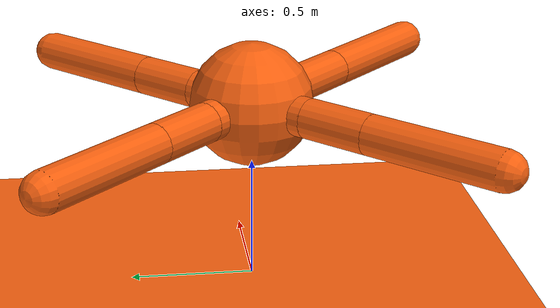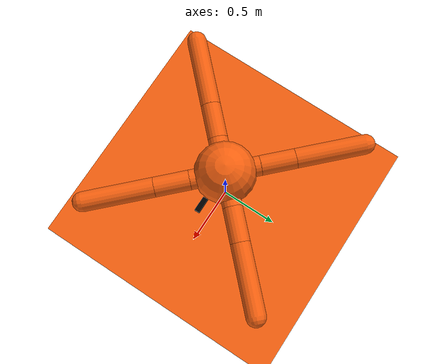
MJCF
<mujoco model="ant">
  <default>
    <joint armature="0.01" damping="0.1" limited="true"/>
    <geom condim="3" density="5.0" friction="1.5 0.1 0.1" margin="0.01" rgba="0.97 0.38 0.06 1"/>
  </default>

  <option timestep="0.016" iterations="50" tolerance="1e-10" solver="Newton" jacobian="dense" cone="pyramidal"/>

  <asset>
      <texture type="skybox" builtin="gradient" rgb1="0.3 0.5 0.7" rgb2="0 0 0" width="512" height="512"/>
      <texture name="texplane" type="2d" builtin="checker" rgb1=".2 .3 .4" rgb2=".1 0.15 0.2" width="512" height="512" mark="cross" markrgb=".8 .8 .8"/>
      <texture name="texgeom" type="cube" builtin="flat" mark="cross" width="127" height="1278"
          rgb1="0.8 0.6 0.4" rgb2="0.8 0.6 0.4" markrgb="1 1 1" random="0.01"/>

      <material name="matplane" reflectance="0.3" texture="texplane" texrepeat="1 1" texuniform="true"/>
      <material name="matgeom" texture="texgeom" texuniform="true" rgba="0.8 0.6 .4 1"/>
  </asset>

  <worldbody>
    <geom name="floor" pos="0 0 0" size="0 0 .25" type="plane" material="matplane" condim="3"/>

    <light directional="false" diffuse=".2 .2 .2" specular="0 0 0" pos="0 0 5" dir="0 0 -1" castshadow="false"/>
    <light mode="targetbodycom" target="torso" directional="false" diffuse=".8 .8 .8" specular="0.3 0.3 0.3" pos="0 0 4.0" dir="0 0 -1"/>

    <body name="torso" pos="0 0 0.75">
      <freejoint name="root"/>
      <geom name="torso_geom" pos="0 0 0" size="0.25" type="sphere"/>

      <!-- Fixed Camera Mount -->
      <body name="camera_mount" pos="0.3 0 0.1">

        <joint name="pan_joint" type="hinge" axis="0 0 1" range="-90 90"/>

        <body name="camera_tilt" pos="0 0 0">
          <joint name="tilt_joint" type="hinge" axis="0 1 0" range="-45 45"/>

          <body name="camera_body" pos="0 0 0">
            <geom type="box" rgba="0 0 0 1" size="0.06 0.02 0.02" contype="2" conaffinity="2" name="camera_body_geom" pos=".03 0 0"/>
          </body>

        </body>
      </body>

      <geom fromto="0.0 0.0 0.0 0.2 0.2 0.0" name="aux_1_geom" size="0.08" type="capsule"/>
      <geom fromto="0.0 0.0 0.0 -0.2 0.2 0.0" name="aux_2_geom" size="0.08" type="capsule"/>
      <geom fromto="0.0 0.0 0.0 -0.2 -0.2 0.0" name="aux_3_geom" size="0.08" type="capsule"/>
      <geom fromto="0.0 0.0 0.0 0.2 -0.2 0.0" name="aux_4_geom" size="0.08" type="capsule"/>

      <body name="front_left_leg" pos="0.2 0.2 0">
        <joint axis="0 0 1" name="hip_1" pos="0.0 0.0 0.0" range="-40 40" type="hinge"/>
        <geom fromto="0.0 0.0 0.0 0.2 0.2 0.0" name="left_leg_geom" size="0.08" type="capsule"/>
        <body pos="0.2 0.2 0" name="front_left_foot">
          <joint axis="-1 1 0" name="ankle_1" pos="0.0 0.0 0.0" range="30 100" type="hinge"/>
          <geom fromto="0.0 0.0 0.0 0.4 0.4 0.0" name="left_ankle_geom" size="0.08" type="capsule"/>
        </body>
      </body>
      <body name="front_right_leg" pos="-0.2 0.2 0">
        <joint axis="0 0 1" name="hip_2" pos="0.0 0.0 0.0" range="-40 40" type="hinge"/>
        <geom fromto="0.0 0.0 0.0 -0.2 0.2 0.0" name="right_leg_geom" size="0.08" type="capsule"/>
        <body pos="-0.2 0.2 0" name="front_right_foot">
          <joint axis="1 1 0" name="ankle_2" pos="0.0 0.0 0.0" range="-100 -30" type="hinge"/>
          <geom fromto="0.0 0.0 0.0 -0.4 0.4 0.0" name="right_ankle_geom" size="0.08" type="capsule"/>
        </body>
      </body>
      <body name="left_back_leg" pos="-0.2 -0.2 0">
        <joint axis="0 0 1" name="hip_3" pos="0.0 0.0 0.0" range="-40 40" type="hinge"/>
        <geom fromto="0.0 0.0 0.0 -0.2 -0.2 0.0" name="back_leg_geom" size="0.08" type="capsule"/>
        <body pos="-0.2 -0.2 0" name="left_back_foot">
          <joint axis="-1 1 0" name="ankle_3" pos="0.0 0.0 0.0" range="-100 -30" type="hinge"/>
          <geom fromto="0.0 0.0 0.0 -0.4 -0.4 0.0" name="third_ankle_geom" size="0.08" type="capsule"/>
        </body>
      </body>
      <body name="right_back_leg" pos="0.2 -0.2 0">
        <joint axis="0 0 1" name="hip_4" pos="0.0 0.0 0.0" range="-40 40" type="hinge"/>
        <geom fromto="0.0 0.0 0.0 0.2 -0.2 0.0" name="rightback_leg_geom" size="0.08" type="capsule"/>
        <body pos="0.2 -0.2 0" name="right_back_foot">
          <joint axis="1 1 0" name="ankle_4" pos="0.0 0.0 0.0" range="30 100" type="hinge"/>
          <geom fromto="0.0 0.0 0.0 0.4 -0.4 0.0" name="fourth_ankle_geom" size="0.08" type="capsule"/>
        </body>
      </body>
    </body>
  </worldbody>

  <actuator>
    <motor ctrllimited="true" ctrlrange="-1.0 1.0" joint="hip_4" gear="15"/>
    <motor ctrllimited="true" ctrlrange="-1.0 1.0" joint="ankle_4" gear="15"/>
    <motor ctrllimited="true" ctrlrange="-1.0 1.0" joint="hip_1" gear="15"/>
    <motor ctrllimited="true" ctrlrange="-1.0 1.0" joint="ankle_1" gear="15"/>
    <motor ctrllimited="true" ctrlrange="-1.0 1.0" joint="hip_2" gear="15"/>
    <motor ctrllimited="true" ctrlrange="-1.0 1.0" joint="ankle_2" gear="15"/>
    <motor ctrllimited="true" ctrlrange="-1.0 1.0" joint="hip_3" gear="15"/>
    <motor ctrllimited="true" ctrlrange="-1.0 1.0" joint="ankle_3" gear="15"/>

    <motor ctrllimited="true" ctrlrange="-1.0 1.0" joint="pan_joint" gear="5"/>
    <motor ctrllimited="true" ctrlrange="-1.0 1.0" joint="tilt_joint" gear="5"/>
  </actuator>
</mujoco>
